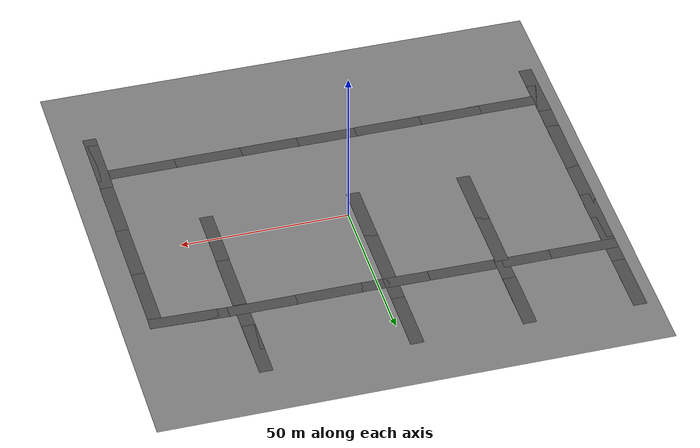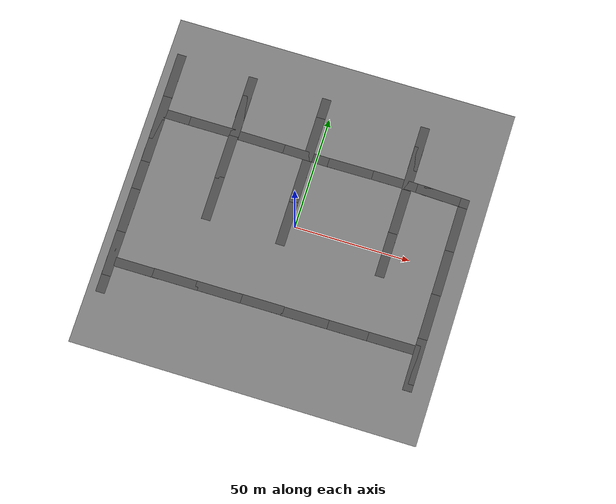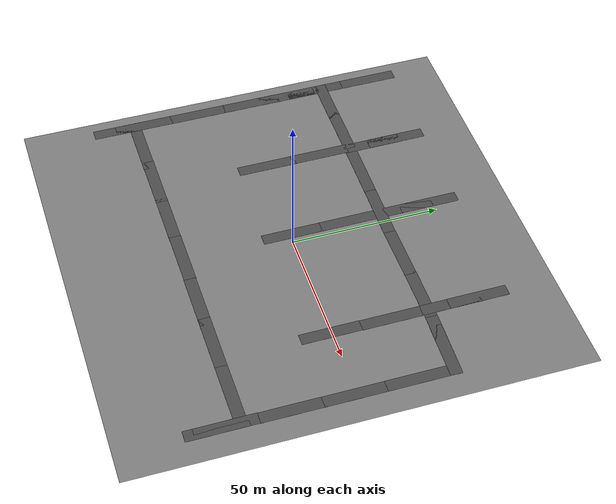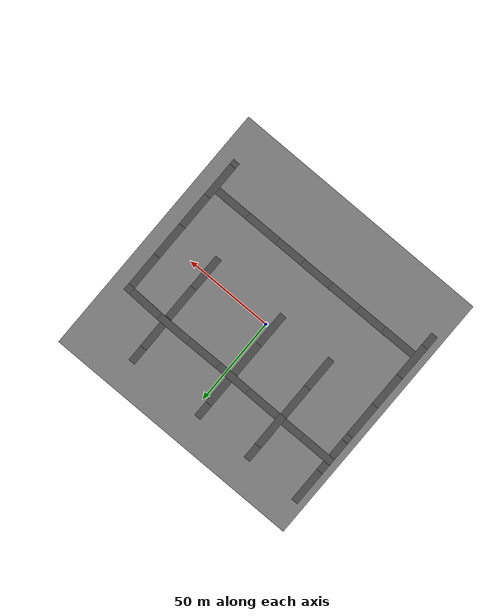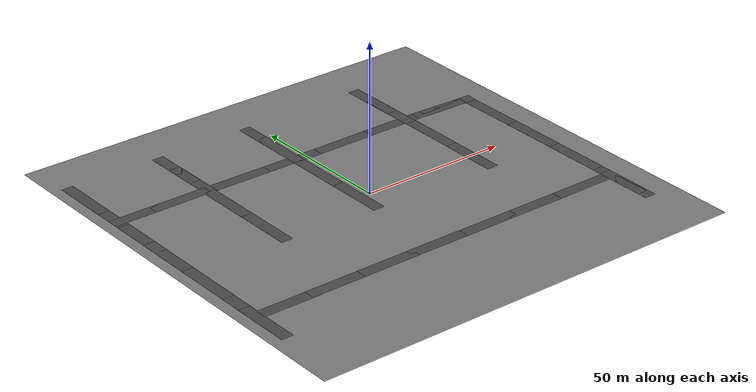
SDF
<sdf version="1.10">
 <world name="default">
  <physics type="ode">
   <max_step_size>0.0040000000000000001</max_step_size>
   <real_time_factor>1</real_time_factor>
   <real_time_update_rate>250</real_time_update_rate>
  </physics>
  <plugin name="gz::sim::systems::Physics" filename="gz-sim-physics-system"/>
  <plugin name="gz::sim::systems::SceneBroadcaster" filename="gz-sim-scene-broadcaster-system"/>
  <plugin name="gz::sim::systems::UserCommands" filename="gz-sim-user-commands-system"/>
  <plugin name="gz::sim::systems::Contact" filename="gz-sim-contact-system"/>
  <plugin name="gz::sim::systems::Imu" filename="gz-sim-imu-system"/>
  <plugin name="gz::sim::systems::AirPressure" filename="gz-sim-air-pressure-system"/>
  <plugin name="gz::sim::systems::ApplyLinkWrench" filename="gz-sim-apply-link-wrench-system"/>
  <plugin name="gz::sim::systems::NavSat" filename="gz-sim-navsat-system"/>
  <plugin name="gz::sim::systems::Sensors" filename="gz-sim-sensors-system">
   <render_engine>ogre2</render_engine>
  </plugin>
  <gravity>0 0 -9.8065999999999995</gravity>
  <magnetic_field>6.0000000000000002e-06 2.3e-05 -4.1999999999999998e-05</magnetic_field>
  <atmosphere type="adiabatic"/>
  <scene>
   <grid>false</grid>
   <ambient>0.400000006 0.400000006 0.400000006 1</ambient>
   <background>0.699999988 0.699999988 0.699999988 1</background>
   <shadows>true</shadows>
  </scene>
  <spherical_coordinates>
   <surface_model>EARTH_WGS84</surface_model>
   <world_frame_orientation>ENU</world_frame_orientation>
   <latitude_deg>50.293615072404997</latitude_deg>
   <longitude_deg>18.674141300161885</longitude_deg>
   <elevation>0</elevation>
   <heading_deg>0</heading_deg>
   <altitude>0</altitude>
  </spherical_coordinates>
  <model name="mine">
   <pose>0 0 0.12295199930667877 0 0 -0.0028702376941504839</pose>
   <static>true</static>
   <link name="link">
    <collision name="collision">
     <geometry>
      <mesh>
       <uri>file:///home/karol/ws/src/dron_sim/sim_bringup/models/mine/model://mine/meshes/mine.dae</uri>
      </mesh>
     </geometry>
    </collision>
    <visual name="visual">
     <geometry>
      <mesh>
       <uri>file:///home/karol/ws/src/dron_sim/sim_bringup/models/mine/model://mine/meshes/mine.dae</uri>
      </mesh>
     </geometry>
    </visual>
    <inertial>
     <mass>1</mass>
     <inertia><ixx>1</ixx><ixy>0</ixy><ixz>0</ixz><iyy>1</iyy><iyz>0</iyz><izz>1</izz></inertia>
    </inertial>
   </link>
  </model>
  <model name="asphalt_plane_0">
   <static>true</static>
   <link name="link">
    <collision name="collision"><geometry><box><size>20 4 0.10000000000000001</size></box></geometry></collision>
    <visual name="visual">
     <cast_shadows>false</cast_shadows>
     <geometry><box><size>20 4 0.10000000000000001</size></box></geometry>
     <material>
      <script>
       <uri>https://fuel.gazebosim.org/1.0/openrobotics/models/asphalt plane/3/files/materials/scripts</uri>
       <uri>https://fuel.gazebosim.org/1.0/openrobotics/models/asphalt plane/3/files/materials/textures</uri>
       <name>vrc/asphalt</name>
      </script>
     </material>
    </visual>
    <inertial>
     <mass>1</mass>
     <inertia><ixx>1</ixx><ixy>0</ixy><ixz>0</ixz><iyy>1</iyy><iyz>0</iyz><izz>1</izz></inertia>
    </inertial>
   </link>
   <pose>-61.217483520507812 32.286003112792969 0.10000000000000001 0 0 -0.0062067301766573144</pose>
  </model>
  <model name="asphalt_plane_1">
   <static>true</static>
   <link name="link">
    <collision name="collision"><geometry><box><size>20 4 0.10000000000000001</size></box></geometry></collision>
    <visual name="visual">
     <cast_shadows>false</cast_shadows>
     <geometry><box><size>20 4 0.10000000000000001</size></box></geometry>
     <material>
      <script>
       <uri>https://fuel.gazebosim.org/1.0/openrobotics/models/asphalt plane/3/files/materials/scripts</uri>
       <uri>https://fuel.gazebosim.org/1.0/openrobotics/models/asphalt plane/3/files/materials/textures</uri>
       <name>vrc/asphalt</name>
      </script>
     </material>
    </visual>
    <inertial>
     <mass>1</mass>
     <inertia><ixx>1</ixx><ixy>0</ixy><ixz>0</ixz><iyy>1</iyy><iyz>0</iyz><izz>1</izz></inertia>
    </inertial>
   </link>
   <pose>-24.775899887084961 32.055500030517578 0.10000000000000001 0 0 -0.01061559961811568</pose>
  </model>
  <model name="asphalt_plane_2">
   <static>true</static>
   <link name="link">
    <collision name="collision"><geometry><box><size>20 4 0.10000000000000001</size></box></geometry></collision>
    <visual name="visual">
     <cast_shadows>false</cast_shadows>
     <geometry><box><size>20 4 0.10000000000000001</size></box></geometry>
     <material>
      <script>
       <uri>https://fuel.gazebosim.org/1.0/openrobotics/models/asphalt plane/3/files/materials/scripts</uri>
       <uri>https://fuel.gazebosim.org/1.0/openrobotics/models/asphalt plane/3/files/materials/textures</uri>
       <name>vrc/asphalt</name>
      </script>
     </material>
    </visual>
    <inertial>
     <mass>1</mass>
     <inertia><ixx>1</ixx><ixy>0</ixy><ixz>0</ixz><iyy>1</iyy><iyz>0</iyz><izz>1</izz></inertia>
    </inertial>
   </link>
   <pose>-5.0120377540588379 31.818853378295898 0.10000000000000001 0 0 -0.015387500146380972</pose>
  </model>
  <model name="asphalt_plane_3">
   <static>true</static>
   <link name="link">
    <collision name="collision"><geometry><box><size>20 4 0.10000000000000001</size></box></geometry></collision>
    <visual name="visual">
     <cast_shadows>false</cast_shadows>
     <geometry><box><size>20 4 0.10000000000000001</size></box></geometry>
     <material>
      <script>
       <uri>https://fuel.gazebosim.org/1.0/openrobotics/models/asphalt plane/3/files/materials/scripts</uri>
       <uri>https://fuel.gazebosim.org/1.0/openrobotics/models/asphalt plane/3/files/materials/textures</uri>
       <name>vrc/asphalt</name>
      </script>
     </material>
    </visual>
    <inertial>
     <mass>1</mass>
     <inertia><ixx>1</ixx><ixy>0</ixy><ixz>0</ixz><iyy>1</iyy><iyz>0</iyz><izz>1</izz></inertia>
    </inertial>
   </link>
   <pose>14.530110359191895 31.741804122924805 0.10000000000000001 0 0 0.0044157601731133434</pose>
  </model>
  <model name="asphalt_plane_4">
   <static>true</static>
   <link name="link">
    <collision name="collision"><geometry><box><size>20 4 0.10000000000000001</size></box></geometry></collision>
    <visual name="visual">
     <cast_shadows>false</cast_shadows>
     <geometry><box><size>20 4 0.10000000000000001</size></box></geometry>
     <material>
      <script>
       <uri>https://fuel.gazebosim.org/1.0/openrobotics/models/asphalt plane/3/files/materials/scripts</uri>
       <uri>https://fuel.gazebosim.org/1.0/openrobotics/models/asphalt plane/3/files/materials/textures</uri>
       <name>vrc/asphalt</name>
      </script>
     </material>
    </visual>
    <inertial>
     <mass>1</mass>
     <inertia><ixx>1</ixx><ixy>0</ixy><ixz>0</ixz><iyy>1</iyy><iyz>0</iyz><izz>1</izz></inertia>
    </inertial>
   </link>
   <pose>34.047901153564453 31.812299728393555 0.10000000000000001 0 0 -0.0038311104937279248</pose>
  </model>
  <model name="asphalt_plane_5">
   <static>true</static>
   <link name="link">
    <collision name="collision"><geometry><box><size>20 4 0.10000000000000001</size></box></geometry></collision>
    <visual name="visual">
     <cast_shadows>false</cast_shadows>
     <geometry><box><size>20 4 0.10000000000000001</size></box></geometry>
     <material>
      <script>
       <uri>https://fuel.gazebosim.org/1.0/openrobotics/models/asphalt plane/3/files/materials/scripts</uri>
       <uri>https://fuel.gazebosim.org/1.0/openrobotics/models/asphalt plane/3/files/materials/textures</uri>
       <name>vrc/asphalt</name>
      </script>
     </material>
    </visual>
    <inertial>
     <mass>1</mass>
     <inertia><ixx>1</ixx><ixy>0</ixy><ixz>0</ixz><iyy>1</iyy><iyz>0</iyz><izz>1</izz></inertia>
    </inertial>
   </link>
   <pose>53.204425811767578 31.432657241821289 0.10000000000000001 0 0 -0.035102299478958564</pose>
  </model>
  <model name="asphalt_plane_6">
   <static>true</static>
   <link name="link">
    <collision name="collision"><geometry><box><size>20 4 0.10000000000000001</size></box></geometry></collision>
    <visual name="visual">
     <cast_shadows>false</cast_shadows>
     <geometry><box><size>20 4 0.10000000000000001</size></box></geometry>
     <material>
      <script>
       <uri>https://fuel.gazebosim.org/1.0/openrobotics/models/asphalt plane/3/files/materials/scripts</uri>
       <uri>https://fuel.gazebosim.org/1.0/openrobotics/models/asphalt plane/3/files/materials/textures</uri>
       <name>vrc/asphalt</name>
      </script>
     </material>
    </visual>
    <inertial>
     <mass>1</mass>
     <inertia><ixx>1</ixx><ixy>0</ixy><ixz>0</ixz><iyy>1</iyy><iyz>0</iyz><izz>1</izz></inertia>
    </inertial>
   </link>
   <pose>56.973941802978516 31.258821487426758 0.10000000000000001 0 0 -0.030759699327713306</pose>
  </model>
  <model name="asphalt_plane_7">
   <static>true</static>
   <link name="link">
    <collision name="collision"><geometry><box><size>4 20 0.10000000000000001</size></box></geometry></collision>
    <visual name="visual">
     <cast_shadows>false</cast_shadows>
     <geometry><box><size>4 20 0.10000000000000001</size></box></geometry>
     <material>
      <script>
       <uri>https://fuel.gazebosim.org/1.0/openrobotics/models/asphalt plane/3/files/materials/scripts</uri>
       <uri>https://fuel.gazebosim.org/1.0/openrobotics/models/asphalt plane/3/files/materials/textures</uri>
       <name>vrc/asphalt</name>
      </script>
     </material>
    </visual>
    <inertial>
     <mass>1</mass>
     <inertia><ixx>1</ixx><ixy>0</ixy><ixz>0</ixz><iyy>1</iyy><iyz>0</iyz><izz>1</izz></inertia>
    </inertial>
   </link>
   <pose>-36.754901885986328 40.108165740966797 0.10000000000000001 0 0 0</pose>
  </model>
  <model name="asphalt_plane_8">
   <static>true</static>
   <link name="link">
    <collision name="collision"><geometry><box><size>4 20 0.10000000000000001</size></box></geometry></collision>
    <visual name="visual">
     <cast_shadows>false</cast_shadows>
     <geometry><box><size>4 20 0.10000000000000001</size></box></geometry>
     <material>
      <script>
       <uri>https://fuel.gazebosim.org/1.0/openrobotics/models/asphalt plane/3/files/materials/scripts</uri>
       <uri>https://fuel.gazebosim.org/1.0/openrobotics/models/asphalt plane/3/files/materials/textures</uri>
       <name>vrc/asphalt</name>
      </script>
     </material>
    </visual>
    <inertial>
     <mass>1</mass>
     <inertia><ixx>1</ixx><ixy>0</ixy><ixz>0</ixz><iyy>1</iyy><iyz>0</iyz><izz>1</izz></inertia>
    </inertial>
   </link>
   <pose>-36.830970764160156 48.987098693847656 0.10000000000000001 0 0 0</pose>
  </model>
  <model name="asphalt_plane_9">
   <static>true</static>
   <link name="link">
    <collision name="collision"><geometry><box><size>4 20 0.10000000000000001</size></box></geometry></collision>
    <visual name="visual">
     <cast_shadows>false</cast_shadows>
     <geometry><box><size>4 20 0.10000000000000001</size></box></geometry>
     <material>
      <script>
       <uri>https://fuel.gazebosim.org/1.0/openrobotics/models/asphalt plane/3/files/materials/scripts</uri>
       <uri>https://fuel.gazebosim.org/1.0/openrobotics/models/asphalt plane/3/files/materials/textures</uri>
       <name>vrc/asphalt</name>
      </script>
     </material>
    </visual>
    <inertial>
     <mass>1</mass>
     <inertia><ixx>1</ixx><ixy>0</ixy><ixz>0</ixz><iyy>1</iyy><iyz>0</iyz><izz>1</izz></inertia>
    </inertial>
   </link>
   <pose>-69.2471923828125 29.912099838256836 0.10000000000000001 0 0 0</pose>
  </model>
  <model name="asphalt_plane_10">
   <static>true</static>
   <link name="link">
    <collision name="collision"><geometry><box><size>4 20 0.10000000000000001</size></box></geometry></collision>
    <visual name="visual">
     <cast_shadows>false</cast_shadows>
     <geometry><box><size>4 20 0.10000000000000001</size></box></geometry>
     <material>
      <script>
       <uri>https://fuel.gazebosim.org/1.0/openrobotics/models/asphalt plane/3/files/materials/scripts</uri>
       <uri>https://fuel.gazebosim.org/1.0/openrobotics/models/asphalt plane/3/files/materials/textures</uri>
       <name>vrc/asphalt</name>
      </script>
     </material>
    </visual>
    <inertial>
     <mass>1</mass>
     <inertia><ixx>1</ixx><ixy>0</ixy><ixz>0</ixz><iyy>1</iyy><iyz>0</iyz><izz>1</izz></inertia>
    </inertial>
   </link>
   <pose>-69.254173278808594 49.835899353027344 0.10000000000000001 0 0 0</pose>
  </model>
  <model name="asphalt_plane_11">
   <static>true</static>
   <link name="link">
    <collision name="collision"><geometry><box><size>4 20 0.10000000000000001</size></box></geometry></collision>
    <visual name="visual">
     <cast_shadows>false</cast_shadows>
     <geometry><box><size>4 20 0.10000000000000001</size></box></geometry>
     <material>
      <script>
       <uri>https://fuel.gazebosim.org/1.0/openrobotics/models/asphalt plane/3/files/materials/scripts</uri>
       <uri>https://fuel.gazebosim.org/1.0/openrobotics/models/asphalt plane/3/files/materials/textures</uri>
       <name>vrc/asphalt</name>
      </script>
     </material>
    </visual>
    <inertial>
     <mass>1</mass>
     <inertia><ixx>1</ixx><ixy>0</ixy><ixz>0</ixz><iyy>1</iyy><iyz>0</iyz><izz>1</izz></inertia>
    </inertial>
   </link>
   <pose>-3.8194301128387451 39.800098419189453 0.10000000149011612 0 0 0</pose>
  </model>
  <model name="asphalt_plane_12">
   <static>true</static>
   <link name="link">
    <collision name="collision"><geometry><box><size>4 20 0.10000000000000001</size></box></geometry></collision>
    <visual name="visual">
     <cast_shadows>false</cast_shadows>
     <geometry><box><size>4 20 0.10000000000000001</size></box></geometry>
     <material>
      <script>
       <uri>https://fuel.gazebosim.org/1.0/openrobotics/models/asphalt plane/3/files/materials/scripts</uri>
       <uri>https://fuel.gazebosim.org/1.0/openrobotics/models/asphalt plane/3/files/materials/textures</uri>
       <name>vrc/asphalt</name>
      </script>
     </material>
    </visual>
    <inertial>
     <mass>1</mass>
     <inertia><ixx>1</ixx><ixy>0</ixy><ixz>0</ixz><iyy>1</iyy><iyz>0</iyz><izz>1</izz></inertia>
    </inertial>
   </link>
   <pose>-3.8157899379730225 48.787849426269531 0.10000000149011612 0 0 0</pose>
  </model>
  <model name="asphalt_plane_13">
   <static>true</static>
   <link name="link">
    <collision name="collision"><geometry><box><size>4 20 0.10000000000000001</size></box></geometry></collision>
    <visual name="visual">
     <cast_shadows>false</cast_shadows>
     <geometry><box><size>4 20 0.10000000000000001</size></box></geometry>
     <material>
      <script>
       <uri>https://fuel.gazebosim.org/1.0/openrobotics/models/asphalt plane/3/files/materials/scripts</uri>
       <uri>https://fuel.gazebosim.org/1.0/openrobotics/models/asphalt plane/3/files/materials/textures</uri>
       <name>vrc/asphalt</name>
      </script>
     </material>
    </visual>
    <inertial>
     <mass>1</mass>
     <inertia><ixx>1</ixx><ixy>0</ixy><ixz>0</ixz><iyy>1</iyy><iyz>0</iyz><izz>1</izz></inertia>
    </inertial>
   </link>
   <pose>40.065200805664062 39.448524475097656 0.10000000000000001 0 0 0</pose>
  </model>
  <model name="asphalt_plane_14">
   <static>true</static>
   <link name="link">
    <collision name="collision"><geometry><box><size>4 20 0.10000000000000001</size></box></geometry></collision>
    <visual name="visual">
     <cast_shadows>false</cast_shadows>
     <geometry><box><size>4 20 0.10000000000000001</size></box></geometry>
     <material>
      <script>
       <uri>https://fuel.gazebosim.org/1.0/openrobotics/models/asphalt plane/3/files/materials/scripts</uri>
       <uri>https://fuel.gazebosim.org/1.0/openrobotics/models/asphalt plane/3/files/materials/textures</uri>
       <name>vrc/asphalt</name>
      </script>
     </material>
    </visual>
    <inertial>
     <mass>1</mass>
     <inertia><ixx>1</ixx><ixy>0</ixy><ixz>0</ixz><iyy>1</iyy><iyz>0</iyz><izz>1</izz></inertia>
    </inertial>
   </link>
   <pose>40.003288269042969 48.785900115966797 0.10000000000000001 0 0 0</pose>
  </model>
  <model name="asphalt_plane_15">
   <static>true</static>
   <link name="link">
    <collision name="collision"><geometry><box><size>4 20 0.10000000000000001</size></box></geometry></collision>
    <visual name="visual">
     <cast_shadows>false</cast_shadows>
     <geometry><box><size>4 20 0.10000000000000001</size></box></geometry>
     <material>
      <script>
       <uri>https://fuel.gazebosim.org/1.0/openrobotics/models/asphalt plane/3/files/materials/scripts</uri>
       <uri>https://fuel.gazebosim.org/1.0/openrobotics/models/asphalt plane/3/files/materials/textures</uri>
       <name>vrc/asphalt</name>
      </script>
     </material>
    </visual>
    <inertial>
     <mass>1</mass>
     <inertia><ixx>1</ixx><ixy>0</ixy><ixz>0</ixz><iyy>1</iyy><iyz>0</iyz><izz>1</izz></inertia>
    </inertial>
   </link>
   <pose>64.909599304199219 19.035907745361328 0.10000000000000001 0 0 0</pose>
  </model>
  <model name="asphalt_plane_16">
   <static>true</static>
   <link name="link">
    <collision name="collision"><geometry><box><size>4 20 0.10000000000000001</size></box></geometry></collision>
    <visual name="visual">
     <cast_shadows>false</cast_shadows>
     <geometry><box><size>4 20 0.10000000000000001</size></box></geometry>
     <material>
      <script>
       <uri>https://fuel.gazebosim.org/1.0/openrobotics/models/asphalt plane/3/files/materials/scripts</uri>
       <uri>https://fuel.gazebosim.org/1.0/openrobotics/models/asphalt plane/3/files/materials/textures</uri>
       <name>vrc/asphalt</name>
      </script>
     </material>
    </visual>
    <inertial>
     <mass>1</mass>
     <inertia><ixx>1</ixx><ixy>0</ixy><ixz>0</ixz><iyy>1</iyy><iyz>0</iyz><izz>1</izz></inertia>
    </inertial>
   </link>
   <pose>64.915397644042969 -0.956828773021698 0.10000000000000001 0 0 0</pose>
  </model>
  <model name="asphalt_plane_17">
   <static>true</static>
   <link name="link">
    <collision name="collision"><geometry><box><size>4 20 0.10000000000000001</size></box></geometry></collision>
    <visual name="visual">
     <cast_shadows>false</cast_shadows>
     <geometry><box><size>4 20 0.10000000000000001</size></box></geometry>
     <material>
      <script>
       <uri>https://fuel.gazebosim.org/1.0/openrobotics/models/asphalt plane/3/files/materials/scripts</uri>
       <uri>https://fuel.gazebosim.org/1.0/openrobotics/models/asphalt plane/3/files/materials/textures</uri>
       <name>vrc/asphalt</name>
      </script>
     </material>
    </visual>
    <inertial>
     <mass>1</mass>
     <inertia><ixx>1</ixx><ixy>0</ixy><ixz>0</ixz><iyy>1</iyy><iyz>0</iyz><izz>1</izz></inertia>
    </inertial>
   </link>
   <pose>64.841201782226562 -20.834541320800781 0.10000000000000001 0 0 0</pose>
  </model>
  <model name="asphalt_plane_18">
   <static>true</static>
   <link name="link">
    <collision name="collision"><geometry><box><size>4 20 0.10000000000000001</size></box></geometry></collision>
    <visual name="visual">
     <cast_shadows>false</cast_shadows>
     <geometry><box><size>4 20 0.10000000000000001</size></box></geometry>
     <material>
      <script>
       <uri>https://fuel.gazebosim.org/1.0/openrobotics/models/asphalt plane/3/files/materials/scripts</uri>
       <uri>https://fuel.gazebosim.org/1.0/openrobotics/models/asphalt plane/3/files/materials/textures</uri>
       <name>vrc/asphalt</name>
      </script>
     </material>
    </visual>
    <inertial>
     <mass>1</mass>
     <inertia><ixx>1</ixx><ixy>0</ixy><ixz>0</ixz><iyy>1</iyy><iyz>0</iyz><izz>1</izz></inertia>
    </inertial>
   </link>
   <pose>64.738609313964844 -40.751701354980469 0.10000000000000001 0 0 0</pose>
  </model>
  <model name="asphalt_plane_19">
   <static>true</static>
   <link name="link">
    <collision name="collision"><geometry><box><size>4 20 0.10000000000000001</size></box></geometry></collision>
    <visual name="visual">
     <cast_shadows>false</cast_shadows>
     <geometry><box><size>4 20 0.10000000000000001</size></box></geometry>
     <material>
      <script>
       <uri>https://fuel.gazebosim.org/1.0/openrobotics/models/asphalt plane/3/files/materials/scripts</uri>
       <uri>https://fuel.gazebosim.org/1.0/openrobotics/models/asphalt plane/3/files/materials/textures</uri>
       <name>vrc/asphalt</name>
      </script>
     </material>
    </visual>
    <inertial>
     <mass>1</mass>
     <inertia><ixx>1</ixx><ixy>0</ixy><ixz>0</ixz><iyy>1</iyy><iyz>0</iyz><izz>1</izz></inertia>
    </inertial>
   </link>
   <pose>-69.308998107910156 6.0952801704406738 0.10000000000000001 0 0 0</pose>
  </model>
  <model name="asphalt_plane_20">
   <static>true</static>
   <link name="link">
    <collision name="collision"><geometry><box><size>4 20 0.10000000000000001</size></box></geometry></collision>
    <visual name="visual">
     <cast_shadows>false</cast_shadows>
     <geometry><box><size>4 20 0.10000000000000001</size></box></geometry>
     <material>
      <script>
       <uri>https://fuel.gazebosim.org/1.0/openrobotics/models/asphalt plane/3/files/materials/scripts</uri>
       <uri>https://fuel.gazebosim.org/1.0/openrobotics/models/asphalt plane/3/files/materials/textures</uri>
       <name>vrc/asphalt</name>
      </script>
     </material>
    </visual>
    <inertial>
     <mass>1</mass>
     <inertia><ixx>1</ixx><ixy>0</ixy><ixz>0</ixz><iyy>1</iyy><iyz>0</iyz><izz>1</izz></inertia>
    </inertial>
   </link>
   <pose>-69.332267761230469 -13.41919994354248 0.10000000000000001 0 0 0</pose>
  </model>
  <model name="asphalt_plane_21">
   <static>true</static>
   <link name="link">
    <collision name="collision"><geometry><box><size>4 20 0.10000000000000001</size></box></geometry></collision>
    <visual name="visual">
     <cast_shadows>false</cast_shadows>
     <geometry><box><size>4 20 0.10000000000000001</size></box></geometry>
     <material>
      <script>
       <uri>https://fuel.gazebosim.org/1.0/openrobotics/models/asphalt plane/3/files/materials/scripts</uri>
       <uri>https://fuel.gazebosim.org/1.0/openrobotics/models/asphalt plane/3/files/materials/textures</uri>
       <name>vrc/asphalt</name>
      </script>
     </material>
    </visual>
    <inertial>
     <mass>1</mass>
     <inertia><ixx>1</ixx><ixy>0</ixy><ixz>0</ixz><iyy>1</iyy><iyz>0</iyz><izz>1</izz></inertia>
    </inertial>
   </link>
   <pose>-69.383697509765625 -33.147899627685547 0.10000000000000001 0 0 0</pose>
  </model>
  <model name="asphalt_plane_22">
   <static>true</static>
   <link name="link">
    <collision name="collision"><geometry><box><size>4 20 0.10000000000000001</size></box></geometry></collision>
    <visual name="visual">
     <cast_shadows>false</cast_shadows>
     <geometry><box><size>4 20 0.10000000000000001</size></box></geometry>
     <material>
      <script>
       <uri>https://fuel.gazebosim.org/1.0/openrobotics/models/asphalt plane/3/files/materials/scripts</uri>
       <uri>https://fuel.gazebosim.org/1.0/openrobotics/models/asphalt plane/3/files/materials/textures</uri>
       <name>vrc/asphalt</name>
      </script>
     </material>
    </visual>
    <inertial>
     <mass>1</mass>
     <inertia><ixx>1</ixx><ixy>0</ixy><ixz>0</ixz><iyy>1</iyy><iyz>0</iyz><izz>1</izz></inertia>
    </inertial>
   </link>
   <pose>-69.411453247070312 -40.968101501464844 0.10000000000000001 0 0 0</pose>
  </model>
  <model name="asphalt_plane">
   <static>true</static>
   <link name="link">
    <collision name="collision"><geometry><box><size>20 4 0.10000000000000001</size></box></geometry></collision>
    <visual name="visual">
     <cast_shadows>false</cast_shadows>
     <geometry><box><size>20 4 0.10000000000000001</size></box></geometry>
     <material>
      <script>
       <uri>https://fuel.gazebosim.org/1.0/openrobotics/models/asphalt plane/3/files/materials/scripts</uri>
       <uri>https://fuel.gazebosim.org/1.0/openrobotics/models/asphalt plane/3/files/materials/textures</uri>
       <name>vrc/asphalt</name>
      </script>
     </material>
    </visual>
    <inertial>
     <mass>1</mass>
     <inertia><ixx>1</ixx><ixy>0</ixy><ixz>0</ixz><iyy>1</iyy><iyz>0</iyz><izz>1</izz></inertia>
    </inertial>
   </link>
   <pose>-46.877128637557007 32.255424064310205 0.10000000000000001 0 0 0</pose>
  </model>
  <model name="asphalt_plane_23">
   <static>true</static>
   <link name="link">
    <collision name="collision"><geometry><box><size>20 4 0.10000000000000001</size></box></geometry></collision>
    <visual name="visual">
     <cast_shadows>false</cast_shadows>
     <geometry><box><size>20 4 0.10000000000000001</size></box></geometry>
     <material>
      <script>
       <uri>https://fuel.gazebosim.org/1.0/openrobotics/models/asphalt plane/3/files/materials/scripts</uri>
       <uri>https://fuel.gazebosim.org/1.0/openrobotics/models/asphalt plane/3/files/materials/textures</uri>
       <name>vrc/asphalt</name>
      </script>
     </material>
    </visual>
    <inertial>
     <mass>1</mass>
     <inertia><ixx>1</ixx><ixy>0</ixy><ixz>0</ixz><iyy>1</iyy><iyz>0</iyz><izz>1</izz></inertia>
    </inertial>
   </link>
   <pose>-57.700267179701569 -36.420220784361767 0.10000000000000001 0 0 0</pose>
  </model>
  <model name="asphalt_plane_24">
   <static>true</static>
   <link name="link">
    <collision name="collision"><geometry><box><size>20 4 0.10000000000000001</size></box></geometry></collision>
    <visual name="visual">
     <cast_shadows>false</cast_shadows>
     <geometry><box><size>20 4 0.10000000000000001</size></box></geometry>
     <material>
      <script>
       <uri>https://fuel.gazebosim.org/1.0/openrobotics/models/asphalt plane/3/files/materials/scripts</uri>
       <uri>https://fuel.gazebosim.org/1.0/openrobotics/models/asphalt plane/3/files/materials/textures</uri>
       <name>vrc/asphalt</name>
      </script>
     </material>
    </visual>
    <inertial>
     <mass>1</mass>
     <inertia><ixx>1</ixx><ixy>0</ixy><ixz>0</ixz><iyy>1</iyy><iyz>0</iyz><izz>1</izz></inertia>
    </inertial>
   </link>
   <pose>-40.948898315429688 -36.324001312255859 0.10000000000000001 0 0 0</pose>
  </model>
  <model name="asphalt_plane_25">
   <static>true</static>
   <link name="link">
    <collision name="collision"><geometry><box><size>20 4 0.10000000000000001</size></box></geometry></collision>
    <visual name="visual">
     <cast_shadows>false</cast_shadows>
     <geometry><box><size>20 4 0.10000000000000001</size></box></geometry>
     <material>
      <script>
       <uri>https://fuel.gazebosim.org/1.0/openrobotics/models/asphalt plane/3/files/materials/scripts</uri>
       <uri>https://fuel.gazebosim.org/1.0/openrobotics/models/asphalt plane/3/files/materials/textures</uri>
       <name>vrc/asphalt</name>
      </script>
     </material>
    </visual>
    <inertial>
     <mass>1</mass>
     <inertia><ixx>1</ixx><ixy>0</ixy><ixz>0</ixz><iyy>1</iyy><iyz>0</iyz><izz>1</izz></inertia>
    </inertial>
   </link>
   <pose>-22.23546337860471 -36.288053687977403 0.10000000000000001 0 0 0</pose>
  </model>
  <model name="asphalt_plane_26">
   <static>true</static>
   <link name="link">
    <collision name="collision"><geometry><box><size>20 4 0.10000000000000001</size></box></geometry></collision>
    <visual name="visual">
     <cast_shadows>false</cast_shadows>
     <geometry><box><size>20 4 0.10000000000000001</size></box></geometry>
     <material>
      <script>
       <uri>https://fuel.gazebosim.org/1.0/openrobotics/models/asphalt plane/3/files/materials/scripts</uri>
       <uri>https://fuel.gazebosim.org/1.0/openrobotics/models/asphalt plane/3/files/materials/textures</uri>
       <name>vrc/asphalt</name>
      </script>
     </material>
    </visual>
    <inertial>
     <mass>1</mass>
     <inertia><ixx>1</ixx><ixy>0</ixy><ixz>0</ixz><iyy>1</iyy><iyz>0</iyz><izz>1</izz></inertia>
    </inertial>
   </link>
   <pose>-3.9713770335818666 -36.210481947376941 0.10000000000000001 0 0 0</pose>
  </model>
  <model name="asphalt_plane_28">
   <static>true</static>
   <link name="link">
    <collision name="collision"><geometry><box><size>20 4 0.10000000000000001</size></box></geometry></collision>
    <visual name="visual">
     <cast_shadows>false</cast_shadows>
     <geometry><box><size>20 4 0.10000000000000001</size></box></geometry>
     <material>
      <script>
       <uri>https://fuel.gazebosim.org/1.0/openrobotics/models/asphalt plane/3/files/materials/scripts</uri>
       <uri>https://fuel.gazebosim.org/1.0/openrobotics/models/asphalt plane/3/files/materials/textures</uri>
       <name>vrc/asphalt</name>
      </script>
     </material>
    </visual>
    <inertial>
     <mass>1</mass>
     <inertia><ixx>1</ixx><ixy>0</ixy><ixz>0</ixz><iyy>1</iyy><iyz>0</iyz><izz>1</izz></inertia>
    </inertial>
   </link>
   <pose>32.744171086946977 -36.31760450865837 0.10000000000000001 0 0 0</pose>
  </model>
  <model name="asphalt_plane_29">
   <static>true</static>
   <link name="link">
    <collision name="collision"><geometry><box><size>20 4 0.10000000000000001</size></box></geometry></collision>
    <visual name="visual">
     <cast_shadows>false</cast_shadows>
     <geometry><box><size>20 4 0.10000000000000001</size></box></geometry>
     <material>
      <script>
       <uri>https://fuel.gazebosim.org/1.0/openrobotics/models/asphalt plane/3/files/materials/scripts</uri>
       <uri>https://fuel.gazebosim.org/1.0/openrobotics/models/asphalt plane/3/files/materials/textures</uri>
       <name>vrc/asphalt</name>
      </script>
     </material>
    </visual>
    <inertial>
     <mass>1</mass>
     <inertia><ixx>1</ixx><ixy>0</ixy><ixz>0</ixz><iyy>1</iyy><iyz>0</iyz><izz>1</izz></inertia>
    </inertial>
   </link>
   <pose>52.731498718261719 -36.303199768066406 0.10000000000000001 0 0 0.0015346934484965289</pose>
  </model>
  <model name="asphalt_plane_30">
   <static>true</static>
   <link name="link">
    <collision name="collision"><geometry><box><size>20 20 0.10000000000000001</size></box></geometry></collision>
    <visual name="visual">
     <cast_shadows>false</cast_shadows>
     <geometry><box><size>4 20 0.10000000000000001</size></box></geometry>
     <material>
      <script>
       <uri>https://fuel.gazebosim.org/1.0/openrobotics/models/asphalt plane/3/files/materials/scripts</uri>
       <uri>https://fuel.gazebosim.org/1.0/openrobotics/models/asphalt plane/3/files/materials/textures</uri>
       <name>vrc/asphalt</name>
      </script>
     </material>
    </visual>
    <inertial>
     <mass>1</mass>
     <inertia><ixx>1</ixx><ixy>0</ixy><ixz>0</ixz><iyy>1</iyy><iyz>0</iyz><izz>1</izz></inertia>
    </inertial>
   </link>
   <pose>-37.022344134098667 21.171242143334805 0.10000000000000001 0 0 0</pose>
  </model>
  <model name="asphalt_plane_31">
   <static>true</static>
   <link name="link">
    <collision name="collision"><geometry><box><size>4 20 0.10000000000000001</size></box></geometry></collision>
    <visual name="visual">
     <cast_shadows>false</cast_shadows>
     <geometry><box><size>4 20 0.10000000000000001</size></box></geometry>
     <material>
      <script>
       <uri>https://fuel.gazebosim.org/1.0/openrobotics/models/asphalt plane/3/files/materials/scripts</uri>
       <uri>https://fuel.gazebosim.org/1.0/openrobotics/models/asphalt plane/3/files/materials/textures</uri>
       <name>vrc/asphalt</name>
      </script>
     </material>
    </visual>
    <inertial>
     <mass>1</mass>
     <inertia><ixx>1</ixx><ixy>0</ixy><ixz>0</ixz><iyy>1</iyy><iyz>0</iyz><izz>1</izz></inertia>
    </inertial>
   </link>
   <pose>-36.973930358886719 2.2217600345611572 0.10000000000000001 0 0 0</pose>
  </model>
  <model name="asphalt_plane_32">
   <static>true</static>
   <link name="link">
    <collision name="collision"><geometry><box><size>4 20 0.10000000000000001</size></box></geometry></collision>
    <visual name="visual">
     <cast_shadows>false</cast_shadows>
     <geometry><box><size>4 20 0.10000000000000001</size></box></geometry>
     <material>
      <script>
       <uri>https://fuel.gazebosim.org/1.0/openrobotics/models/asphalt plane/3/files/materials/scripts</uri>
       <uri>https://fuel.gazebosim.org/1.0/openrobotics/models/asphalt plane/3/files/materials/textures</uri>
       <name>vrc/asphalt</name>
      </script>
     </material>
    </visual>
    <inertial>
     <mass>1</mass>
     <inertia><ixx>1</ixx><ixy>0</ixy><ixz>0</ixz><iyy>1</iyy><iyz>0</iyz><izz>1</izz></inertia>
    </inertial>
   </link>
   <pose>-3.8547451496124268 20.22599983215332 0.10000000149011612 0 0 0</pose>
  </model>
  <model name="asphalt_plane_33">
   <static>true</static>
   <link name="link">
    <collision name="collision"><geometry><box><size>4 20 0.10000000000000001</size></box></geometry></collision>
    <visual name="visual">
     <cast_shadows>false</cast_shadows>
     <geometry><box><size>4 20 0.10000000000000001</size></box></geometry>
     <material>
      <script>
       <uri>https://fuel.gazebosim.org/1.0/openrobotics/models/asphalt plane/3/files/materials/scripts</uri>
       <uri>https://fuel.gazebosim.org/1.0/openrobotics/models/asphalt plane/3/files/materials/textures</uri>
       <name>vrc/asphalt</name>
      </script>
     </material>
    </visual>
    <inertial>
     <mass>1</mass>
     <inertia><ixx>1</ixx><ixy>0</ixy><ixz>0</ixz><iyy>1</iyy><iyz>0</iyz><izz>1</izz></inertia>
    </inertial>
   </link>
   <pose>-3.8434104919433594 0.81530600786209106 0.10000000149011612 0 0 0</pose>
  </model>
  <model name="asphalt_plane_34">
   <static>true</static>
   <link name="link">
    <collision name="collision"><geometry><box><size>4 20 0.10000000000000001</size></box></geometry></collision>
    <visual name="visual">
     <cast_shadows>false</cast_shadows>
     <geometry><box><size>4 20 0.10000000000000001</size></box></geometry>
     <material>
      <script>
       <uri>https://fuel.gazebosim.org/1.0/openrobotics/models/asphalt plane/3/files/materials/scripts</uri>
       <uri>https://fuel.gazebosim.org/1.0/openrobotics/models/asphalt plane/3/files/materials/textures</uri>
       <name>vrc/asphalt</name>
      </script>
     </material>
    </visual>
    <inertial>
     <mass>1</mass>
     <inertia><ixx>1</ixx><ixy>0</ixy><ixz>0</ixz><iyy>1</iyy><iyz>0</iyz><izz>1</izz></inertia>
    </inertial>
   </link>
   <pose>40.150882720947266 19.589000701904297 0.10000000000000001 0 0 0</pose>
  </model>
  <model name="asphalt_plane_35">
   <static>true</static>
   <link name="link">
    <collision name="collision"><geometry><box><size>4 20 0.10000000000000001</size></box></geometry></collision>
    <visual name="visual">
     <cast_shadows>false</cast_shadows>
     <geometry><box><size>4 20 0.10000000000000001</size></box></geometry>
     <material>
      <script>
       <uri>https://fuel.gazebosim.org/1.0/openrobotics/models/asphalt plane/3/files/materials/scripts</uri>
       <uri>https://fuel.gazebosim.org/1.0/openrobotics/models/asphalt plane/3/files/materials/textures</uri>
       <name>vrc/asphalt</name>
      </script>
     </material>
    </visual>
    <inertial>
     <mass>1</mass>
     <inertia><ixx>1</ixx><ixy>0</ixy><ixz>0</ixz><iyy>1</iyy><iyz>0</iyz><izz>1</izz></inertia>
    </inertial>
   </link>
   <pose>40.05316162109375 -0.25200200080871582 0.10000000000000001 0 0 0</pose>
  </model>
  <model name="asphalt_plane_36">
   <static>true</static>
   <link name="link">
    <collision name="collision"><geometry><box><size>4 20 0.10000000000000001</size></box></geometry></collision>
    <visual name="visual">
     <cast_shadows>false</cast_shadows>
     <geometry><box><size>4 20 0.10000000000000001</size></box></geometry>
     <material>
      <script>
       <uri>https://fuel.gazebosim.org/1.0/openrobotics/models/asphalt plane/3/files/materials/scripts</uri>
       <uri>https://fuel.gazebosim.org/1.0/openrobotics/models/asphalt plane/3/files/materials/textures</uri>
       <name>vrc/asphalt</name>
      </script>
     </material>
    </visual>
    <inertial>
     <mass>1</mass>
     <inertia><ixx>1</ixx><ixy>0</ixy><ixz>0</ixz><iyy>1</iyy><iyz>0</iyz><izz>1</izz></inertia>
    </inertial>
   </link>
   <pose>-69.256072998046875 19.384000778198242 0.10000000149011612 0 0 0</pose>
  </model>
  <model name="asphalt_plane_37">
   <static>true</static>
   <link name="link">
    <collision name="collision"><geometry><box><size>4 20 0.10000000000000001</size></box></geometry></collision>
    <visual name="visual">
     <cast_shadows>false</cast_shadows>
     <geometry><box><size>4 20 0.10000000000000001</size></box></geometry>
     <material>
      <script>
       <uri>https://fuel.gazebosim.org/1.0/openrobotics/models/asphalt plane/3/files/materials/scripts</uri>
       <uri>https://fuel.gazebosim.org/1.0/openrobotics/models/asphalt plane/3/files/materials/textures</uri>
       <name>vrc/asphalt</name>
      </script>
     </material>
    </visual>
    <inertial>
     <mass>1</mass>
     <inertia><ixx>1</ixx><ixy>0</ixy><ixz>0</ixz><iyy>1</iyy><iyz>0</iyz><izz>1</izz></inertia>
    </inertial>
   </link>
   <pose>64.730400085449219 -43.835109710693359 0.10000000000000001 0 0 0</pose>
  </model>
  <model name="asphalt_plane_27">
   <static>true</static>
   <link name="link">
    <collision name="collision"><geometry><box><size>20 4 0.10000000000000001</size></box></geometry></collision>
    <visual name="visual">
     <cast_shadows>false</cast_shadows>
     <geometry><box><size>20 4 0.10000000000000001</size></box></geometry>
     <material>
      <script>
       <uri>https://fuel.gazebosim.org/1.0/openrobotics/models/asphalt plane/3/files/materials/scripts</uri>
       <uri>https://fuel.gazebosim.org/1.0/openrobotics/models/asphalt plane/3/files/materials/textures</uri>
       <name>vrc/asphalt</name>
      </script>
     </material>
    </visual>
    <inertial>
     <mass>1</mass>
     <inertia><ixx>1</ixx><ixy>0</ixy><ixz>0</ixz><iyy>1</iyy><iyz>0</iyz><izz>1</izz></inertia>
    </inertial>
   </link>
   <pose>15.489812623602063 -36.309740767331981 0.10000000000000001 0 0 0</pose>
  </model>
  <light name="sun" type="directional">
   <pose>0 0 20 -1.3 0 0.5</pose>
   <intensity>2</intensity>
   <direction>0 0 -1</direction>
   <diffuse>0.800000012 0.800000012 0.800000012 1</diffuse>
   <specular>0.00999999978 0.00999999978 0.00999999978 1</specular>
   <attenuation><range>10</range><linear>1</linear><constant>1</constant><quadratic>0</quadratic></attenuation>
   <spot><inner_angle>0</inner_angle><outer_angle>0</outer_angle><falloff>0</falloff></spot>
  </light>
 </world>
</sdf>
